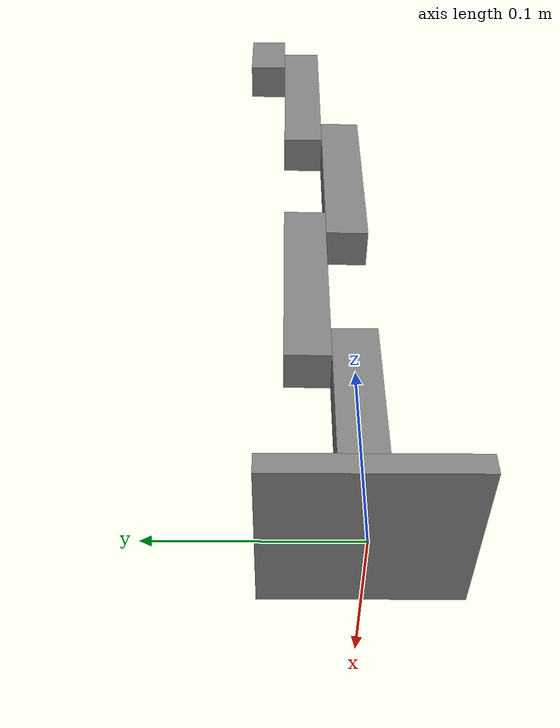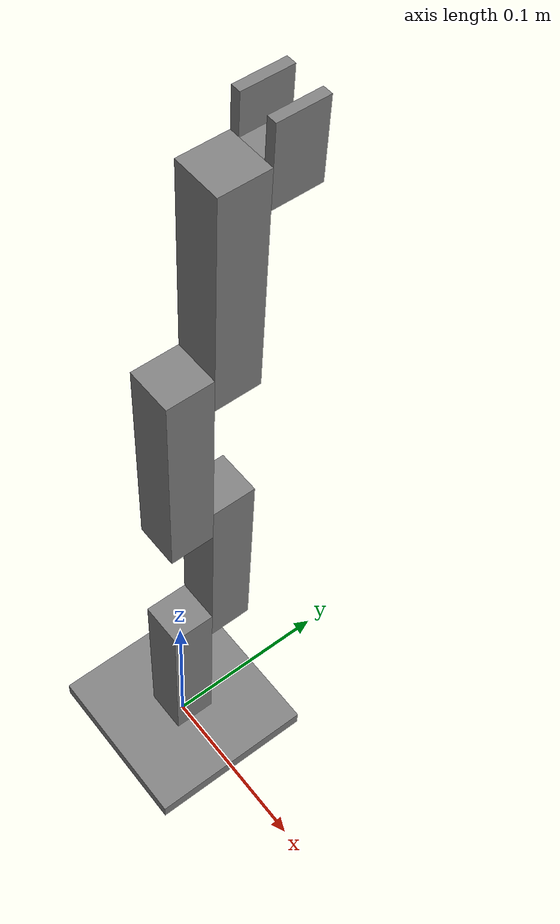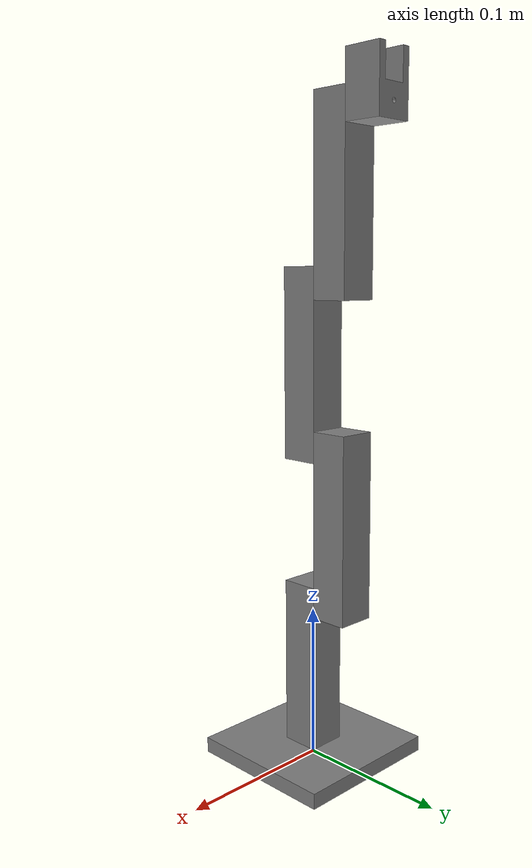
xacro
<?xml version='1.0'?>
<robot xmlns:xacro="http://www.ros.org/wiki/xacro" name="robot_arm_seb">

    <!-- PROPIEDADES -->
    <!-- Brazo -->
    <xacro:property name="armLz" value="${120/1000}" />
    <xacro:property name="armL1z" value="${110/1000}" />
    <xacro:property name="armJz" value="${100/1000}" />
    <xacro:property name="armLxy" value="${25/1000}" />

    <xacro:property name="m" value="1" />

    <!-- Base -->
    <xacro:property name="bL" value="${100/1000}" />
    <xacro:property name="bH" value="${10/1000}" />

    <!-- Tool -->
    <xacro:property name = "offset_tool" value="${10/1000}" />

    <!-- MACROS / FUNCIONES -->
    <!--Boxes:
    x -> l; y -> w; z -> h -->
    <xacro:macro name="arm_macro" params="p_name p_length p_width p_height p_offset">
        <link name="${p_name}">
            <visual>
                <!-- box geometry -->
                <geometry>
                    <box size="${p_length} ${p_width} ${p_height}" />
                </geometry>
                <!-- Esto mueve la caja desde el centro, no el origen con respecto a la caja-->
                <origin xyz="0 0 ${p_offset}" rpy="0 0 0" />

                <material name="gray">
                    <color rgba="0.5 0.5 0.5 1" />
                </material>

            </visual>

            <inertial>
                <mass value="${m}" />
                <origin xyz="0 0 ${p_height/2}" rpy="0 0 0" />
                <inertia ixx="${1/12*m*(p_height*p_height + p_width*p_width)}" ixy="0" ixz="0"
                    iyy="${1/12*m*(p_length*p_length + p_height*p_height)}" iyz="0"
                    izz="${1/12*m*(p_width*p_width + p_length*p_length)}" />
            </inertial>

            <collision>
                <!-- box geometry -->
                <geometry>
                    <box size="${p_length} ${p_width} ${p_height}" />
                </geometry>
                <origin xyz="0 0 ${p_height/2}" rpy="0 0 0" />
            </collision>
        </link>
    </xacro:macro>

    <!-- INICIO ROBOT -->
    <link name="base_link">
    </link>

    <xacro:arm_macro p_name="armBase_link"
        p_length="${bL}"
        p_width="${bL}"
        p_height="${bH}"
        p_offset="0" />

    <joint name="base_armBase_joint" type="fixed">
        <parent link="base_link" />
        <child link="armBase_link" />
        <!--Crea
        offsets the child con respecto a parent -->
        <origin xyz="0 0 ${bH/2}" rpy="0 0 0" />
    </joint>

    <xacro:arm_macro p_name="arm1_link"
        p_length="${armLxy}"
        p_width="${armLxy}"
        p_height="${armL1z}"
        p_offset="${armL1z/2}" />

    <joint name="armBase_arm1_joint" type="fixed">
        <parent link="armBase_link" />
        <child link="arm1_link" />
        <!--Crea
        offsets the child con respecto a parent -->
        <origin xyz="0 0 ${bH/2}" rpy="0 0 0" />
    </joint>

    <xacro:arm_macro p_name="arm2_link"
        p_length="${armLxy}"
        p_width="${armLxy}"
        p_height="${armLz}"
        p_offset="${armLz*0.42}" />

    <joint name="arm1_arm2_joint" type="revolute">
        <parent link="arm1_link" />
        <child link="arm2_link" />
        <origin xyz="0 ${armLxy} ${armJz}" rpy="0 0 0" />
        <axis xyz="0 1 0" />
        <limit effort="1" lower="-1.57" upper="1.57" velocity="1" />
        <dynamics damping="0.1" friction="0.1" />
    </joint>

    <xacro:arm_macro p_name="arm3_link"
        p_length="${armLxy}"
        p_width="${armLxy}"
        p_height="${armLz}"
        p_offset="${armLz*0.42}" />

    <joint name="arm2_arm3_joint" type="revolute">
        <parent link="arm2_link" />
        <child link="arm3_link" />
        <origin xyz="0 ${-armLxy} ${armJz}" rpy="0 0 0" />
        <axis xyz="0 1 0" />
        <limit effort="1" lower="-1.57" upper="1.57" velocity="1" />
        <dynamics damping="0.1" friction="0.1" />
    </joint>

    <xacro:arm_macro p_name="arm4_link"
        p_length="${armLxy}"
        p_width="${armLxy}"
        p_height="${armLz}"
        p_offset="${armLz*0.42}" />

    <joint name="arm3_arm4_joint" type="revolute">
        <parent link="arm3_link" />
        <child link="arm4_link" />
        <origin xyz="0 ${armLxy} ${armJz}" rpy="0 0 0" />
        <axis xyz="0 1 0" />
        <limit effort="1" lower="-1.57" upper="1.57" velocity="1" />
        <dynamics damping="0.1" friction="0.1" />
    </joint>

    <link name="tool_link">
        <visual>
            <!-- mesh -->
            <geometry>
                <mesh filename="package://modelrobot_pkg_seb/model/tool.stl" scale="0.001 0.001 0.001" />
            </geometry>
            <origin xyz="0 0 ${offset_tool}" rpy="0 0 0" />

            <material name="gray">
                <color rgba="0.5 0.5 0.5 1" />
            </material>

        </visual>

        <inertial>
            <mass value="${m}" />
            <origin xyz="0 0 ${offset_tool}" rpy="0 0 0" />
            <inertia ixx="${1/12*m*(40/1000*40/1000 + 25/1000*25/1000)}" ixy="0" ixz="0"
                iyy="${1/12*m*(25/1000*25/1000 + 40/1000*40/1000)}" iyz="0"
                izz="${1/12*m*(25/1000*25/1000 + 25/1000*25/1000)}" />
        </inertial>

        <collision>
            <!-- mesh -->
            <geometry>
                <mesh filename="package://modelrobot_pkg_seb/model/tool.stl" scale="0.001 0.001 0.001"/>
            </geometry>
            <origin xyz="0 0 0" rpy="0 0 0" />
        </collision>
    </link>

    <joint name="arm4_tool_joint" type="revolute">
        <parent link="arm4_link" />
        <child link="tool_link" />
        <origin xyz="0 ${armLxy/2} ${armJz}" rpy="0 0 0" />
        <axis xyz="0 1 0" />
        <limit effort="1" lower="-1.57" upper="1.57" velocity="1" />
        <dynamics damping="0.1" friction="0.1" />
    </joint>

</robot>
